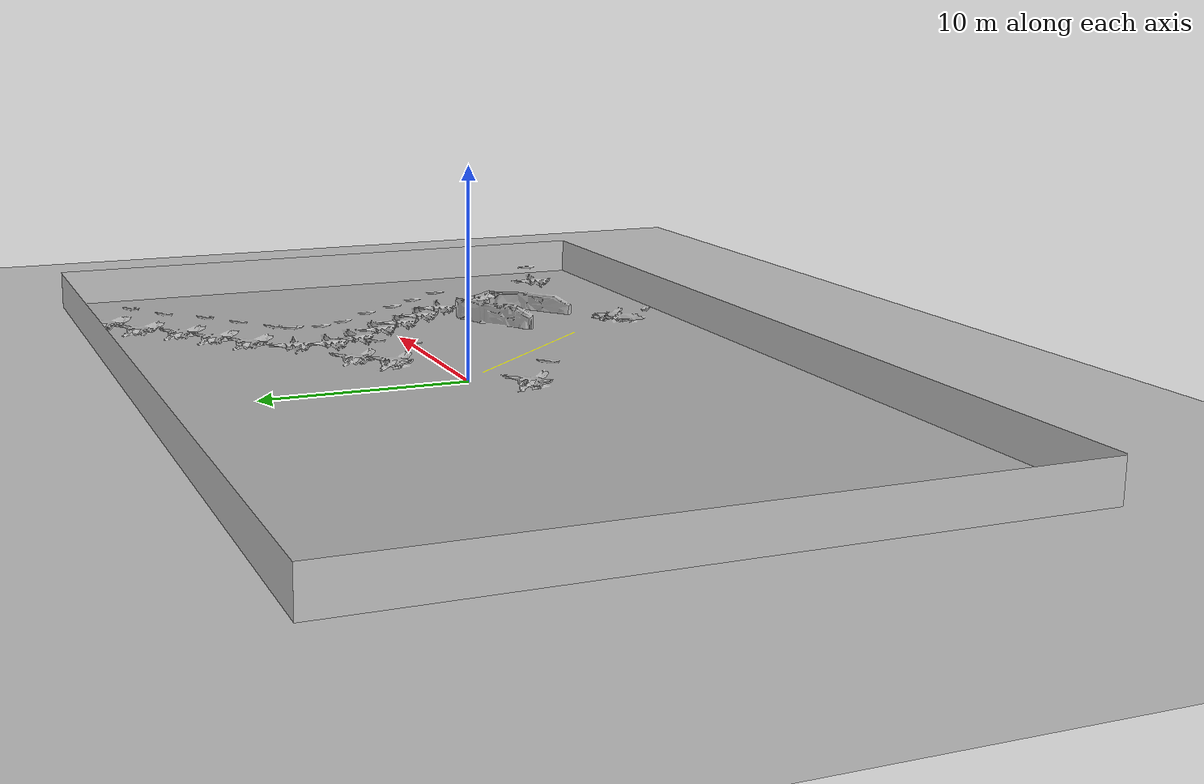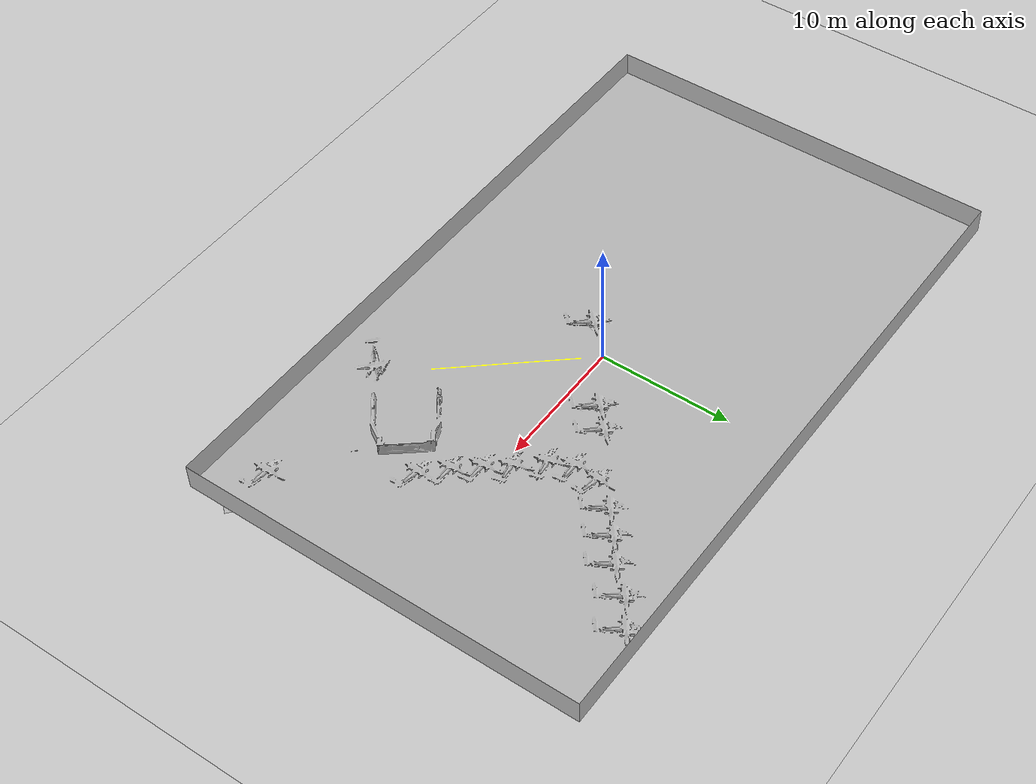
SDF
<?xml version="1.0" ?>
<sdf version="1.5">
  <world name="default">
    <!-- A global light source -->
    <include>
      <uri>model://sun</uri>
    </include>
    <!-- A ground plane -->
    <include>
      <uri>model://ground_plane</uri>
    </include>

    <include>
      <uri>model://airport</uri>
      <pose>0 0 0 0 0 0</pose>
    </include>

    <physics name='default_physics' default='0' type='ode'>
      <gravity>0 0 -9.8066</gravity>
      <ode>
        <solver>
          <type>quick</type>
          <iters>10</iters>
          <sor>1.3</sor>
          <use_dynamic_moi_rescaling>0</use_dynamic_moi_rescaling>
        </solver>
        <constraints>
          <cfm>0</cfm>
          <erp>0.2</erp>
          <contact_max_correcting_vel>100</contact_max_correcting_vel>
          <contact_surface_layer>0.001</contact_surface_layer>
        </constraints>
      </ode>
      <max_step_size>0.004</max_step_size>
      <real_time_factor>1</real_time_factor>
      <real_time_update_rate>250</real_time_update_rate>
      <magnetic_field>6.0e-6 2.3e-5 -4.2e-5</magnetic_field>
    </physics>
  </world>
</sdf>

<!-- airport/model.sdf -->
<sdf version='1.5'>
  <model name='airport'>
    <static>true</static>
    <link name='airport'>
      <pose frame=''>0 0 0 0 0 0</pose>
      <collision name='airport_collision'>
        <geometry>
          <mesh>
            <scale>0.05 0.05 0.05</scale>
            <uri>model://airport/airport.dae</uri>
          </mesh>
        </geometry>
      </collision>
      <visual name='airport'>
        <cast_shadows>false</cast_shadows>
        <geometry>
          <mesh>
            <scale>0.05 0.05 0.05</scale>
            <uri>model://airport/airport.dae</uri>
          </mesh>
        </geometry>
        <material>
          <script>
            <name>air_port</name>
            <uri>model://airport/airport.dae</uri>
          </script>
        </material>
      </visual>
    </link>
  </model>

</sdf>
